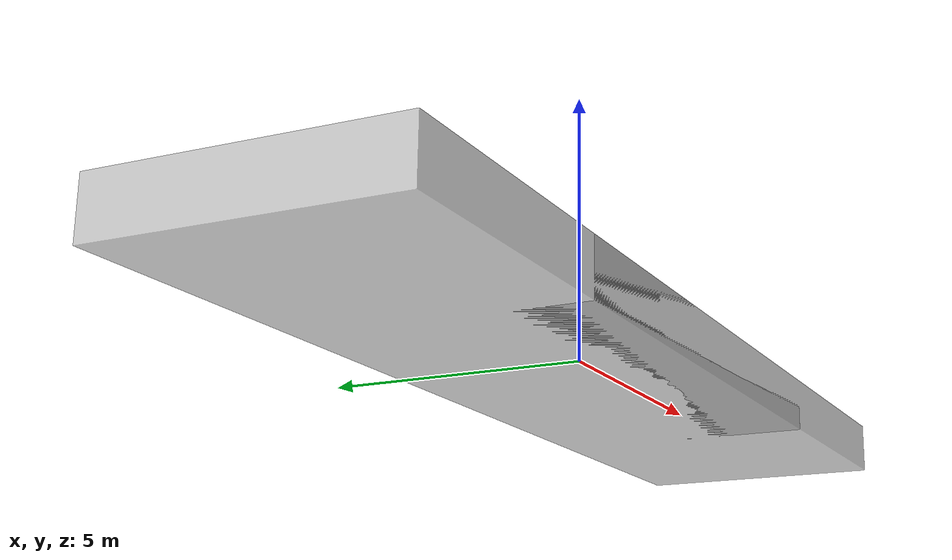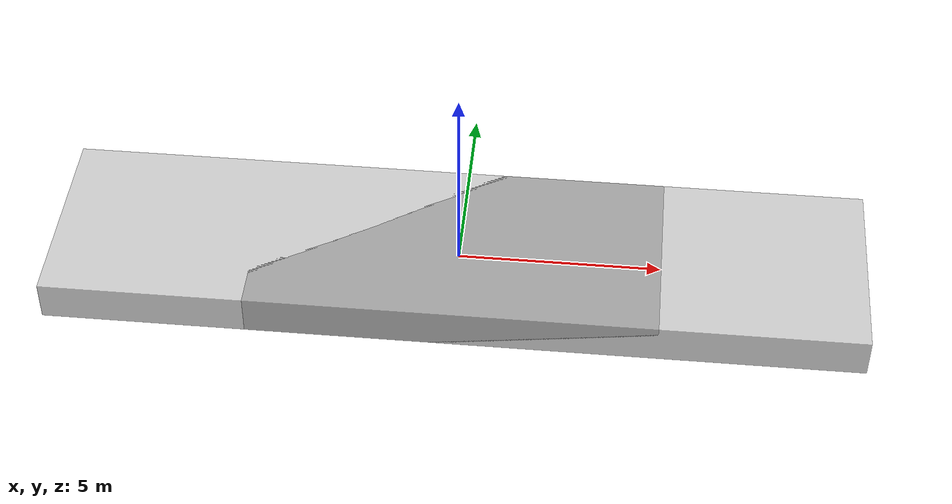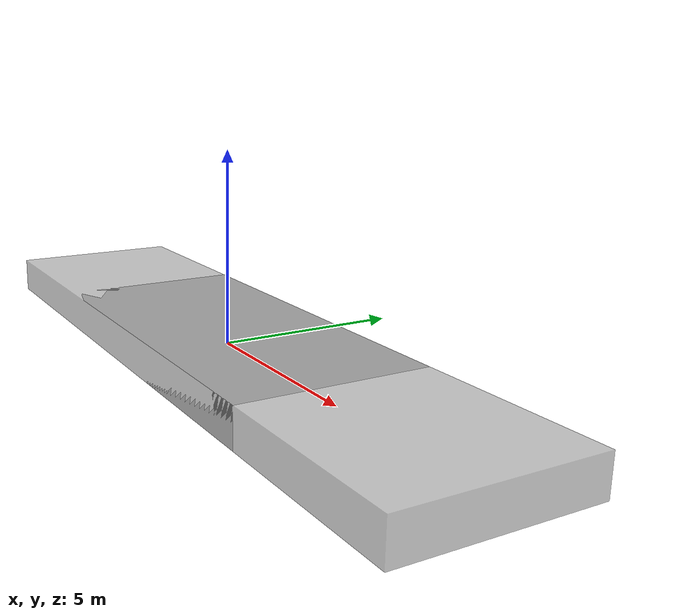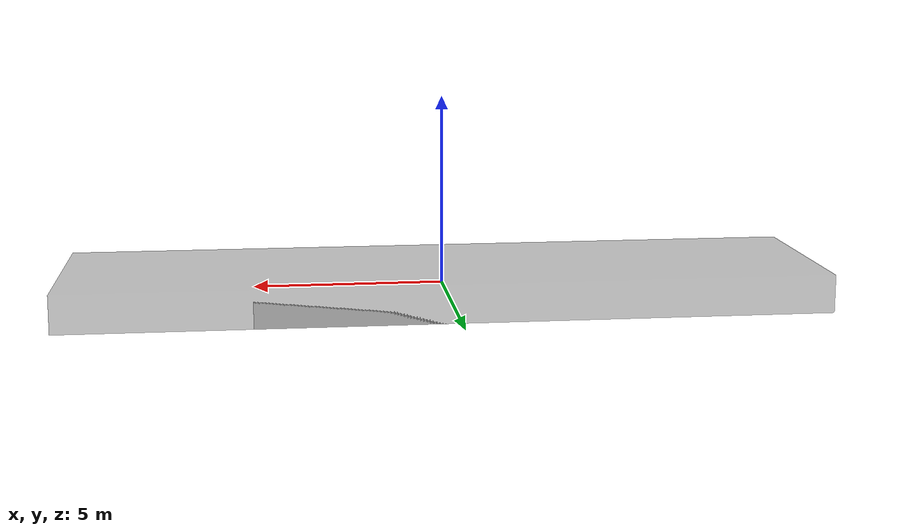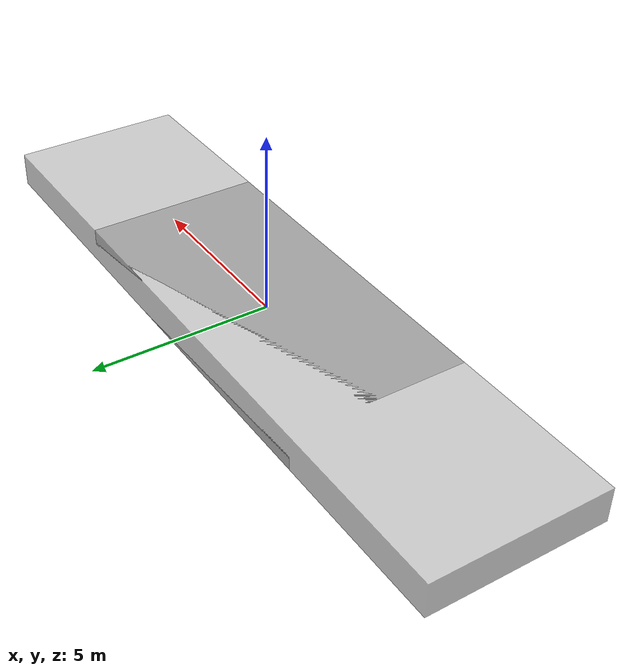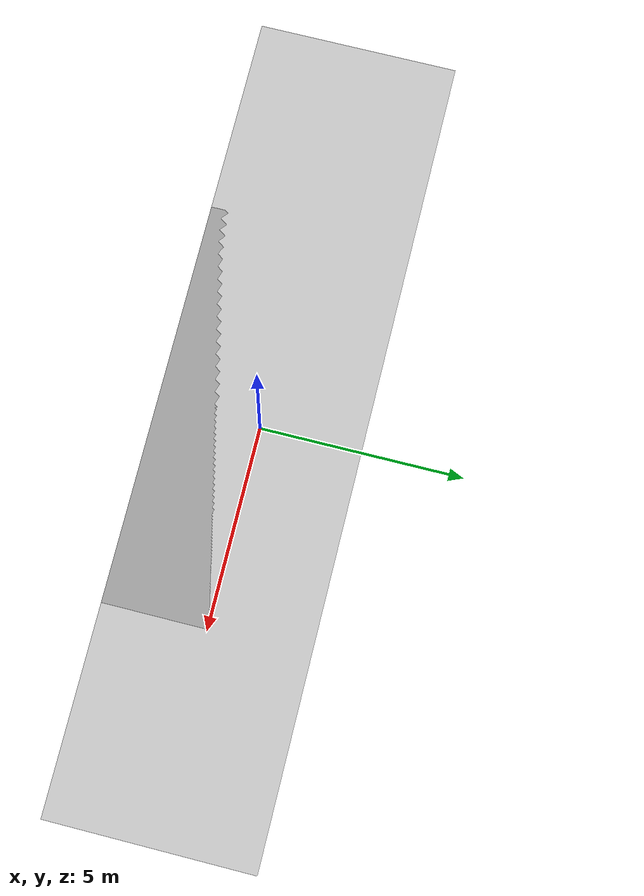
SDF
<?xml version='1.0'?>
<sdf version='1.6'>
  <model name='soft_ground'>
    <link name='link'>
      <pose frame=''>0 0 0 0 -0 0</pose>
      <self_collide>0</self_collide>
      <kinematic>0</kinematic>
      <gravity>1</gravity>
      <inertial>
        <mass>1</mass>
        <pose frame=''>0 0 0 0 -0 0</pose>
        <inertia>
          <ixx>1</ixx>
          <ixy>0</ixy>
          <ixz>0</ixz>
          <iyy>1</iyy>
          <iyz>0</iyz>
          <izz>1</izz>
        </inertia>
      </inertial>
      <visual name='visual_1'>
        <transparency>0.3</transparency>
        <pose frame=''>0 0 0 0 -0 0</pose>
        <cast_shadows>0</cast_shadows>
        <geometry>
          <box>
            <size>10 5 1</size>
          </box>
        </geometry>
        <material>
          <lighting>1</lighting>
          <script>
            <uri>model://soft_ground/materials/scripts</uri>
            <uri>model://soft_ground/materials/textures</uri>
            <name>vrc/mud</name>
          </script>
          <ambient>0.5 0.5 0.5 1</ambient>
          <diffuse>0.5 0.5 0.5 1</diffuse>
          <specular>0.2 0.2 0.2 1</specular>
          <emissive>0 0 0 1</emissive>
          <shader type='vertex'>
            <normal_map>__default__</normal_map>
          </shader>
        </material>
      </visual>
      <collision name='collision'>
        <laser_retro>0</laser_retro>
        <max_contacts>10</max_contacts>
        <pose frame=''>0 0 0 0 -0 0</pose>
        <geometry>
          <box>
            <size>20 5 1</size>
          </box>
        </geometry>
        <surface>
          <friction>
            <ode>
              <mu>10</mu>
              <mu2>10</mu2>
              <fdir1>0 0 0</fdir1>
              <slip1>0</slip1>
              <slip2>0</slip2>
            </ode>
            <torsional>
              <coefficient>1</coefficient>
              <patch_radius>0</patch_radius>
              <surface_radius>0</surface_radius>
              <use_patch_radius>1</use_patch_radius>
              <ode>
                <slip>0</slip>
              </ode>
            </torsional>
          </friction>
          <bounce>
            <restitution_coefficient>0</restitution_coefficient>
            <threshold>1e+06</threshold>
          </bounce>
          <contact>
            <ode>
        <kp>3500.0</kp>  <kd>400.0</kd>  <!-- gain set 1 -->
        <!-- gain set 2 -->
          <!-- kd = 0.3 kp --> <!-- gain set 3 -->
            </ode>
            <collide_without_contact>0</collide_without_contact>
            <collide_without_contact_bitmask>1</collide_without_contact_bitmask>
            <collide_bitmask>1</collide_bitmask>
          </contact>
        </surface>
      </collision>
      <visual name="visual_1">
	<transparency>0.3</transparency>
        <pose>0 0 0 0 0 0</pose>
        <cast_shadows>false</cast_shadows>
        <geometry>
          <box>
            <size>20 5 1</size>
          </box>
        </geometry>
        <material>
	  <lighting>true</lighting>
          <script>
            <uri>model://soft_ground/materials/scripts</uri>
            <uri>model://soft_ground/materials/textures</uri>
            <name>vrc/mud</name>
          </script>
        </material>
      </visual>
    </link>
    <static>1</static>
    <allow_auto_disable>1</allow_auto_disable>
  </model>
</sdf>
